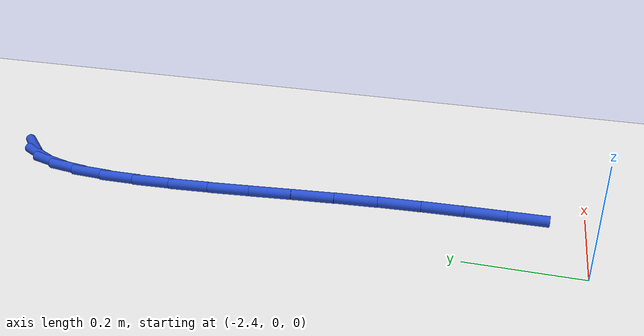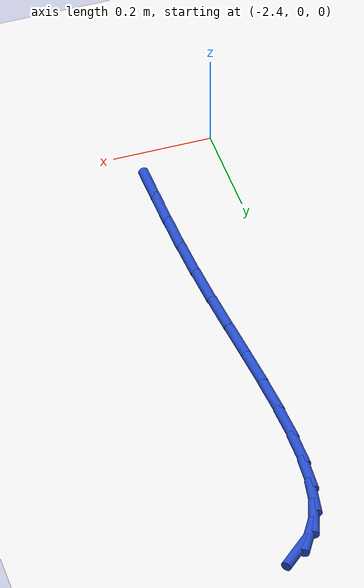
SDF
<sdf version="1.6">
 <world name="default">
  <model name="ground_plane">
   <static>1</static>
   <link name="link">
    <collision name="collision">
     <geometry><plane><normal>0 0 1</normal><size>100 100</size></plane></geometry>
     <surface><friction><ode><mu>100</mu><mu2>50</mu2></ode></friction></surface>
    </collision>
    <visual name="visual">
     <cast_shadows>0</cast_shadows>
     <geometry><plane><normal>0 0 1</normal><size>100 100</size></plane></geometry>
     <material>
      <script><uri>file://media/materials/scripts/gazebo.material</uri><name>Gazebo/WhiteGlow</name></script>
     </material>
    </visual>
   </link>
  </model>
  <model name="line">
   <link name="link_51">
    <pose>-2.205716754656654 1.0973067938892604 0.01 0 1.57 0.7310225629781497</pose>
    <collision name="collision">
     <geometry><cylinder><radius>0.01</radius><length>0.08</length></cylinder></geometry>
    </collision>
    <visual name="visual">
     <material>
      <script><name>Gazebo/Blue</name><uri>file://media/materials/scripts/gazebo.material</uri></script>
     </material>
     <geometry><cylinder><radius>0.01</radius><length>0.08</length></cylinder></geometry>
    </visual>
   </link>
   <link name="link_52">
    <pose>-2.237410206565423 1.0688853509094227 0.01 0 1.57 1.0317780511429415</pose>
    <collision name="collision">
     <geometry><cylinder><radius>0.01</radius><length>0.08</length></cylinder></geometry>
    </collision>
    <visual name="visual">
     <material>
      <script><name>Gazebo/Blue</name><uri>file://media/materials/scripts/gazebo.material</uri></script>
     </material>
     <geometry><cylinder><radius>0.01</radius><length>0.08</length></cylinder></geometry>
    </visual>
   </link>
   <link name="link_53">
    <pose>-2.2606410263838734 1.030044057239845 0.01 0 1.57 1.2537252608420884</pose>
    <collision name="collision">
     <geometry><cylinder><radius>0.01</radius><length>0.08</length></cylinder></geometry>
    </collision>
    <visual name="visual">
     <material>
      <script><name>Gazebo/Blue</name><uri>file://media/materials/scripts/gazebo.material</uri></script>
     </material>
     <geometry><cylinder><radius>0.01</radius><length>0.08</length></cylinder></geometry>
    </visual>
   </link>
   <link name="link_54">
    <pose>-2.2764212954188734 0.9819542946160742 0.01 0 1.57 1.4059827291177547</pose>
    <collision name="collision">
     <geometry><cylinder><radius>0.01</radius><length>0.08</length></cylinder></geometry>
    </collision>
    <visual name="visual">
     <material>
      <script><name>Gazebo/Blue</name><uri>file://media/materials/scripts/gazebo.material</uri></script>
     </material>
     <geometry><cylinder><radius>0.01</radius><length>0.08</length></cylinder></geometry>
    </visual>
   </link>
   <link name="link_55">
    <pose>-2.2857630949772947 0.925787444773656 0.01 0 1.57 1.5087979916263978</pose>
    <collision name="collision">
     <geometry><cylinder><radius>0.01</radius><length>0.08</length></cylinder></geometry>
    </collision>
    <visual name="visual">
     <material>
      <script><name>Gazebo/Blue</name><uri>file://media/materials/scripts/gazebo.material</uri></script>
     </material>
     <geometry><cylinder><radius>0.01</radius><length>0.08</length></cylinder></geometry>
    </visual>
   </link>
   <link name="link_56">
    <pose>-2.2896785063660072 0.8627148894481375 0.01 0 1.57 -1.5635457911150383</pose>
    <collision name="collision">
     <geometry><cylinder><radius>0.01</radius><length>0.08</length></cylinder></geometry>
    </collision>
    <visual name="visual">
     <material>
      <script><name>Gazebo/Blue</name><uri>file://media/materials/scripts/gazebo.material</uri></script>
     </material>
     <geometry><cylinder><radius>0.01</radius><length>0.08</length></cylinder></geometry>
    </visual>
   </link>
   <link name="link_57">
    <pose>-2.2891796108918814 0.7939080103750644 0.01 0 1.57 -1.5176756991834597</pose>
    <collision name="collision">
     <geometry><cylinder><radius>0.01</radius><length>0.08</length></cylinder></geometry>
    </collision>
    <visual name="visual">
     <material>
      <script><name>Gazebo/Blue</name><uri>file://media/materials/scripts/gazebo.material</uri></script>
     </material>
     <geometry><cylinder><radius>0.01</radius><length>0.08</length></cylinder></geometry>
    </visual>
   </link>
   <link name="link_58">
    <pose>-2.285278489861788 0.7205381892899828 0.01 0 1.57 -1.4890203733332028</pose>
    <collision name="collision">
     <geometry><cylinder><radius>0.01</radius><length>0.08</length></cylinder></geometry>
    </collision>
    <visual name="visual">
     <material>
      <script><name>Gazebo/Blue</name><uri>file://media/materials/scripts/gazebo.material</uri></script>
     </material>
     <geometry><cylinder><radius>0.01</radius><length>0.08</length></cylinder></geometry>
    </visual>
   </link>
   <link name="link_59">
    <pose>-2.278987224582597 0.643776807928439 0.01 0 1.57 -1.4739970343757895</pose>
    <collision name="collision">
     <geometry><cylinder><radius>0.01</radius><length>0.08</length></cylinder></geometry>
    </collision>
    <visual name="visual">
     <material>
      <script><name>Gazebo/Blue</name><uri>file://media/materials/scripts/gazebo.material</uri></script>
     </material>
     <geometry><cylinder><radius>0.01</radius><length>0.08</length></cylinder></geometry>
    </visual>
   </link>
   <link name="link_60">
    <pose>-2.271317896361179 0.5647952480259806 0.01 0 1.57 -1.4707284087828405</pose>
    <collision name="collision">
     <geometry><cylinder><radius>0.01</radius><length>0.08</length></cylinder></geometry>
    </collision>
    <visual name="visual">
     <material>
      <script><name>Gazebo/Blue</name><uri>file://media/materials/scripts/gazebo.material</uri></script>
     </material>
     <geometry><cylinder><radius>0.01</radius><length>0.08</length></cylinder></geometry>
    </visual>
   </link>
   <link name="link_61">
    <pose>-2.2632825865044053 0.4847648913181528 0.01 0 1.57 -1.478586825011076</pose>
    <collision name="collision">
     <geometry><cylinder><radius>0.01</radius><length>0.08</length></cylinder></geometry>
    </collision>
    <visual name="visual">
     <material>
      <script><name>Gazebo/Blue</name><uri>file://media/materials/scripts/gazebo.material</uri></script>
     </material>
     <geometry><cylinder><radius>0.01</radius><length>0.08</length></cylinder></geometry>
    </visual>
   </link>
   <link name="link_62">
    <pose>-2.2558933763191447 0.4048571195405014 0.01 0 1.57 -1.4976346749776719</pose>
    <collision name="collision">
     <geometry><cylinder><radius>0.01</radius><length>0.08</length></cylinder></geometry>
    </collision>
    <visual name="visual">
     <material>
      <script><name>Gazebo/Blue</name><uri>file://media/materials/scripts/gazebo.material</uri></script>
     </material>
     <geometry><cylinder><radius>0.01</radius><length>0.08</length></cylinder></geometry>
    </visual>
   </link>
   <link name="link_63">
    <pose>-2.250129837016616 0.3262195802154976 0.01 0 1.57 -1.5201093539085186</pose>
    <collision name="collision">
     <geometry><cylinder><radius>0.01</radius><length>0.08</length></cylinder></geometry>
    </collision>
    <visual name="visual">
     <material>
      <script><name>Gazebo/Blue</name><uri>file://media/materials/scripts/gazebo.material</uri></script>
     </material>
     <geometry><cylinder><radius>0.01</radius><length>0.08</length></cylinder></geometry>
    </visual>
   </link>
   <link name="link_64">
    <pose>-2.2462359374451704 0.24946288943372524 0.01 0 1.57 -1.5372620474075296</pose>
    <collision name="collision">
     <geometry><cylinder><radius>0.01</radius><length>0.08</length></cylinder></geometry>
    </collision>
    <visual name="visual">
     <material>
      <script><name>Gazebo/Blue</name><uri>file://media/materials/scripts/gazebo.material</uri></script>
     </material>
     <geometry><cylinder><radius>0.01</radius><length>0.08</length></cylinder></geometry>
    </visual>
   </link>
   <link name="link_65">
    <pose>-2.2437267204418676 0.17466550596906516 0.01 0 1.57 -1.5482580606958583</pose>
    <collision name="collision">
     <geometry><cylinder><radius>0.01</radius><length>0.08</length></cylinder></geometry>
    </collision>
    <visual name="visual">
     <material>
      <script><name>Gazebo/Blue</name><uri>file://media/materials/scripts/gazebo.material</uri></script>
     </material>
     <geometry><cylinder><radius>0.01</radius><length>0.08</length></cylinder></geometry>
    </visual>
   </link>
   <link name="link_66">
    <pose>-2.2420860540532286 0.10188312923076352 0.01 0 1.57 -1.5525800236210079</pose>
    <collision name="collision">
     <geometry><cylinder><radius>0.01</radius><length>0.08</length></cylinder></geometry>
    </collision>
    <visual name="visual">
     <material>
      <script><name>Gazebo/Blue</name><uri>file://media/materials/scripts/gazebo.material</uri></script>
     </material>
     <geometry><cylinder><radius>0.01</radius><length>0.08</length></cylinder></geometry>
    </visual>
   </link>
  </model>
 </world>
</sdf>
